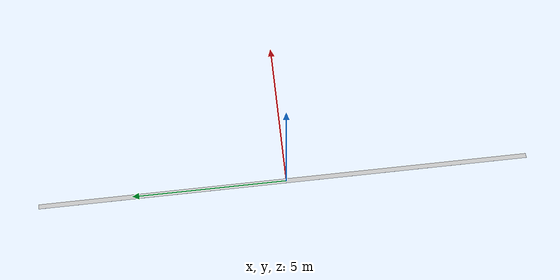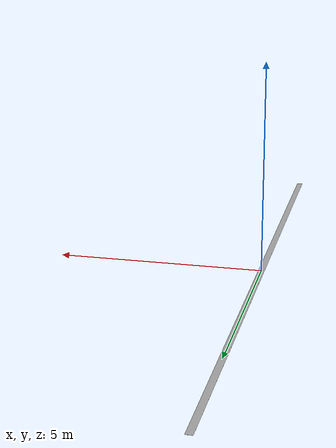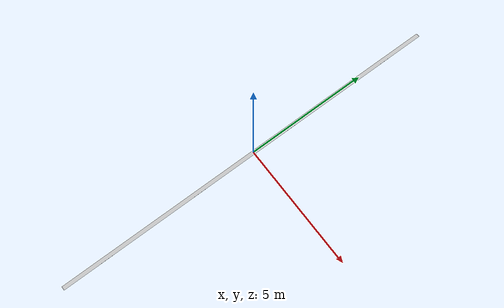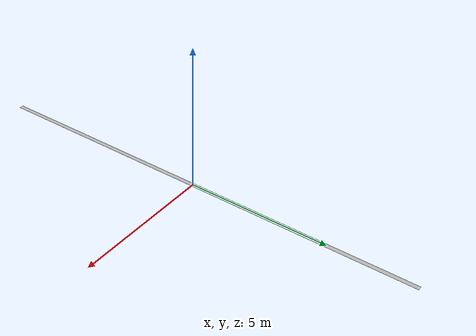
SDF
<?xml version='1.0'?>
<sdf version='1.4'>
	<model name="at1 barrier prelim round">
		<static>true</static>
		<link name='link'>
			<visual name='visual'>
				<geometry>
					<box>
						<size>0.15 16 0.001</size>
					</box>
				</geometry>
				<material>
					<script>
						<uri>model://at1_barrier_prelim_round/materials/scripts</uri>
						<uri>model://at1_barrier_prelim_round/materials/textures</uri>
						<name>at1_barrier_prelim_round/Diffuse</name>
					</script>
				</material>
			</visual>
		</link>
	</model>
</sdf>
